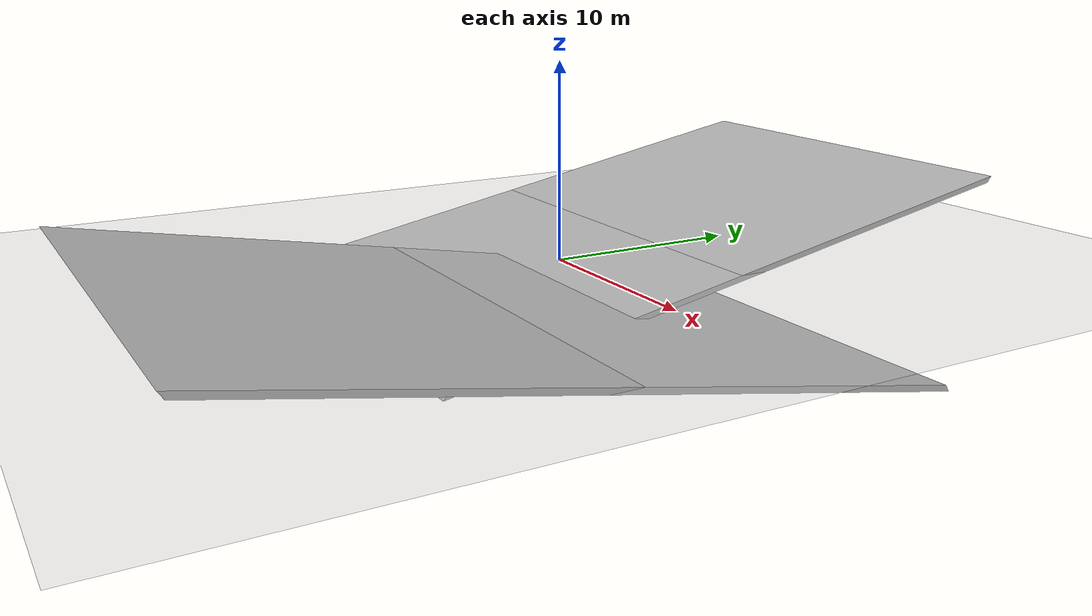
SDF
<?xml version="1.0" ?>
<sdf version="1.4">
  <world name="default">

    <physics type='ode'>
      <max_step_size>0.01</max_step_size>
      <real_time_factor>1</real_time_factor>
      <real_time_update_rate>100</real_time_update_rate>
      <gravity>0 0 -9.8</gravity>
    </physics>

    <!-- A global light source -->
    <include>
      <uri>model://sun</uri>
    </include>

    <!-- A ground plane -->
    <include>
      <uri>model://ground_plane</uri>
    </include>

    <model name="ramp2">
      <static>true</static>
      <link name="nist_simple_ramp_120_link">
        <pose>-5 0 -10.0 -0.6 0 0</pose>
        <collision name="collision">
          <geometry>
            <mesh>
              <uri>model://ramp2/meshes/nist_simple_ramp_120.dae</uri>
              <scale>20 20 20</scale>
            </mesh>
          </geometry>
        </collision>
        <visual name="visual">
          <geometry>
            <mesh>
              <uri>model://ramp2/meshes/nist_simple_ramp_120.dae</uri>
              <scale>20 20 20</scale>
            </mesh>
          </geometry>
        </visual>
      </link>
    </model>

    <model name="ramp3">
      <static>true</static>
      <link name="nist_simple_ramp_120_link">
        <pose>5 0 -10.0 -0.6 0 3.14</pose>
        <collision name="collision">
          <geometry>
            <mesh>
              <uri>model://ramp2/meshes/nist_simple_ramp_120.dae</uri>
              <scale>20 20 20</scale>
            </mesh>
          </geometry>
        </collision>
        <visual name="visual">
          <geometry>
            <mesh>
              <uri>model://ramp2/meshes/nist_simple_ramp_120.dae</uri>
              <scale>20 20 20</scale>
            </mesh>
          </geometry>
        </visual>
      </link>
    </model>

  </world>
</sdf>
